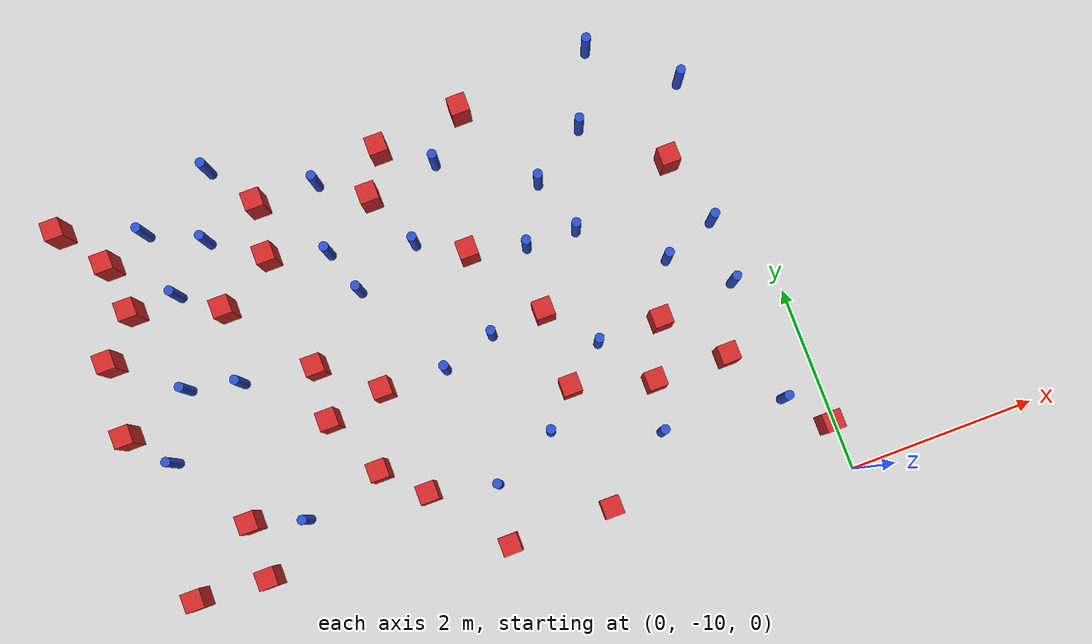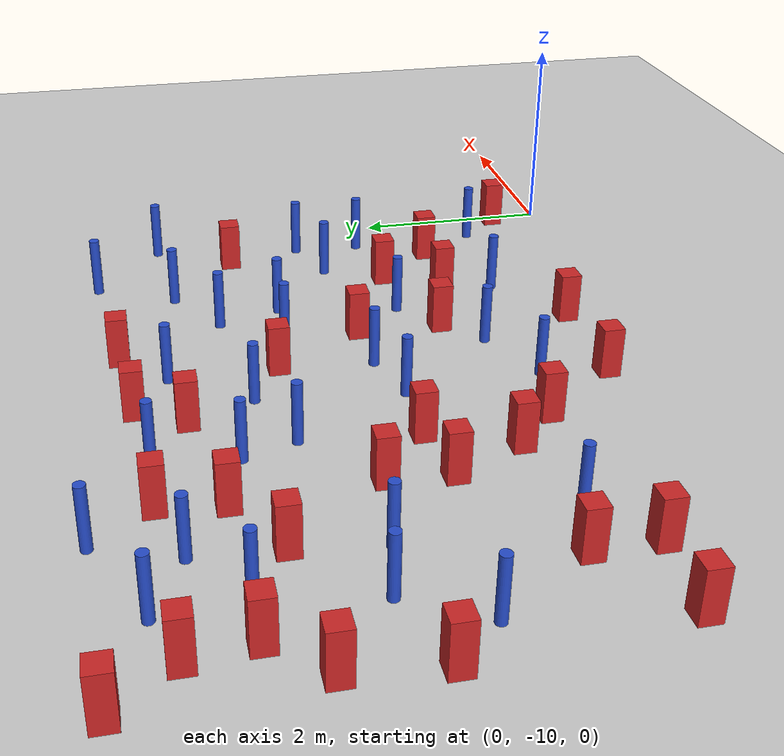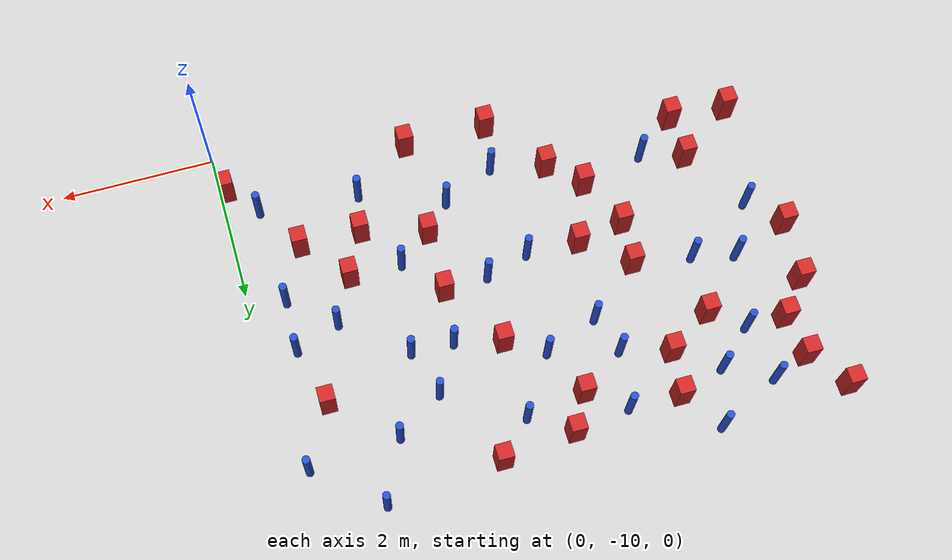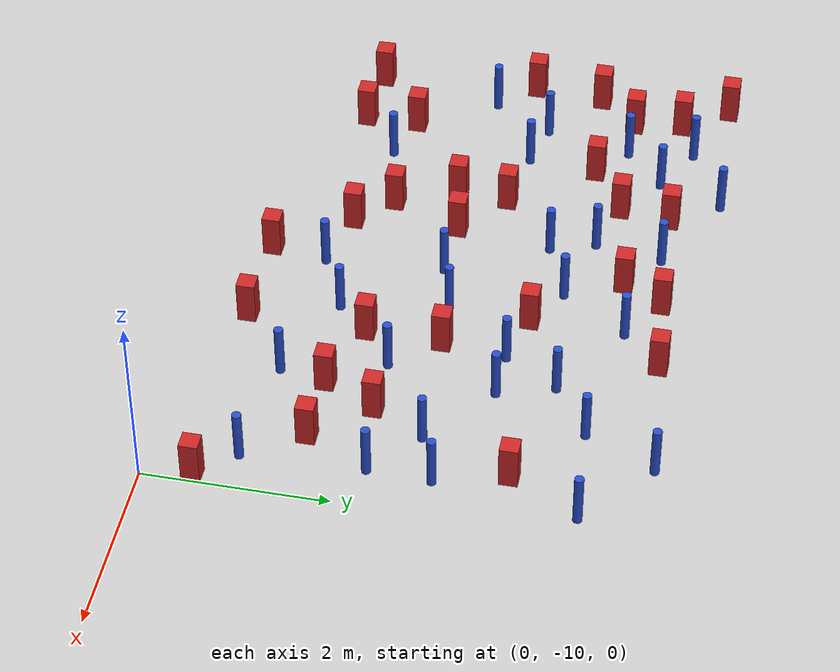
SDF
<sdf version="1.6">
 <world name="default">
  <model name="ground_plane">
   <static>1</static>
   <link name="link">
    <collision name="collision">
     <geometry><plane><normal>0 0 1</normal><size>100 100</size></plane></geometry>
     <surface><friction><ode><mu>100</mu><mu2>50</mu2></ode></friction></surface>
    </collision>
    <visual name="visual">
     <cast_shadows>0</cast_shadows>
     <geometry><plane><normal>0 0 1</normal><size>100 100</size></plane></geometry>
     <material>
      <ambient>1.0 1.0 1.0 1.0</ambient>
      <diffuse>0.8 0.8 0.8 1.0</diffuse>
      <specular>0.01 0.01 0.01 1.000000</specular>
     </material>
    </visual>
   </link>
  </model>
  <model name="square_post_obstacle1">
   <static>true</static>
   <pose>-3.47124073159 -5.11938644158 1.91545236811e-07 -7.35059704564e-06 1.12565212e-07 2.39332434364e-05</pose>
   <link name="link">
    <pose>0 0 0.25 0 -0 0</pose>
    <inertial>
     <mass>100</mass>
     <inertia>
      <ixx>0.166667</ixx>
      <ixy>0</ixy>
      <ixz>0</ixz>
      <iyy>0.166667</iyy>
      <iyz>0</iyz>
      <izz>0.166667</izz>
     </inertia>
    </inertial>
    <collision name="collision"><geometry><box><size>.2 .2 .5</size></box></geometry></collision>
    <visual name="visual">
     <geometry><box><size>.2 .2 .5</size></box></geometry>
     <material>
      <script><name>Gazebo/Red</name><uri>file://media/materials/scripts/gazebo.material</uri></script>
     </material>
    </visual>
   </link>
  </model>
  <model name="pole_obstacle1">
   <static>true</static>
   <pose>-4.20396154523 -5.22190420354 7.38925637345e-09 -8.47170692796e-08 1.24976764786e-08 -1.74513093032e-07</pose>
   <link name="link">
    <pose>0 0 0.3 0 -0 0</pose>
    <inertial>
     <mass>1</mass>
     <inertia><ixx>0.145833</ixx><ixy>0</ixy><ixz>0</ixz><iyy>0.145833</iyy><iyz>0</iyz><izz>0.125</izz></inertia>
    </inertial>
    <collision name="collision">
     <geometry><cylinder><radius>0.05</radius><length>.6</length></cylinder></geometry>
    </collision>
    <visual name="visual">
     <geometry><cylinder><radius>0.05</radius><length>.6</length></cylinder></geometry>
     <material>
      <script><name>Gazebo/Blue</name><uri>file://media/materials/scripts/gazebo.material</uri></script>
     </material>
    </visual>
   </link>
  </model>
  <model name="pole_obstacle7">
   <static>true</static>
   <pose>-1.03853403974 -7.27015901832 7.38925637345e-09 -8.47170692799e-08 1.2497676505e-08 -1.74513093018e-07</pose>
   <link name="link">
    <pose>0 0 0.3 0 -0 0</pose>
    <inertial>
     <mass>1</mass>
     <inertia><ixx>0.145833</ixx><ixy>0</ixy><ixz>0</ixz><iyy>0.145833</iyy><iyz>0</iyz><izz>0.125</izz></inertia>
    </inertial>
    <collision name="collision">
     <geometry><cylinder><radius>0.05</radius><length>.6</length></cylinder></geometry>
    </collision>
    <visual name="visual">
     <geometry><cylinder><radius>0.05</radius><length>.6</length></cylinder></geometry>
     <material>
      <script><name>Gazebo/Blue</name><uri>file://media/materials/scripts/gazebo.material</uri></script>
     </material>
    </visual>
   </link>
  </model>
  <model name="square_post_obstacle9">
   <static>true</static>
   <pose>-2.52650715397 -5.02211175676 1.91545236811e-07 -7.35059704564e-06 1.12565212e-07 2.39332434364e-05</pose>
   <link name="link">
    <pose>0 0 0.25 0 -0 0</pose>
    <inertial>
     <mass>100</mass>
     <inertia>
      <ixx>0.166667</ixx>
      <ixy>0</ixy>
      <ixz>0</ixz>
      <iyy>0.166667</iyy>
      <iyz>0</iyz>
      <izz>0.166667</izz>
     </inertia>
    </inertial>
    <collision name="collision"><geometry><box><size>.2 .2 .5</size></box></geometry></collision>
    <visual name="visual">
     <geometry><box><size>.2 .2 .5</size></box></geometry>
     <material>
      <script><name>Gazebo/Red</name><uri>file://media/materials/scripts/gazebo.material</uri></script>
     </material>
    </visual>
   </link>
  </model>
  <model name="square_post_obstacle18">
   <static>true</static>
   <pose>-4.86705667237 -5.21440921292 1.91545236811e-07 -7.35059704564e-06 1.12565212e-07 2.39332434364e-05</pose>
   <link name="link">
    <pose>0 0 0.25 0 -0 0</pose>
    <inertial>
     <mass>100</mass>
     <inertia>
      <ixx>0.166667</ixx>
      <ixy>0</ixy>
      <ixz>0</ixz>
      <iyy>0.166667</iyy>
      <iyz>0</iyz>
      <izz>0.166667</izz>
     </inertia>
    </inertial>
    <collision name="collision"><geometry><box><size>.2 .2 .5</size></box></geometry></collision>
    <visual name="visual">
     <geometry><box><size>.2 .2 .5</size></box></geometry>
     <material>
      <script><name>Gazebo/Red</name><uri>file://media/materials/scripts/gazebo.material</uri></script>
     </material>
    </visual>
   </link>
  </model>
  <model name="pole_obstacle13">
   <static>true</static>
   <pose>-6.17903770835 -6.80683427116 7.38925637345e-09 -8.47170692796e-08 1.24976764786e-08 -1.74513093032e-07</pose>
   <link name="link">
    <pose>0 0 0.3 0 -0 0</pose>
    <inertial>
     <mass>1</mass>
     <inertia><ixx>0.145833</ixx><ixy>0</ixy><ixz>0</ixz><iyy>0.145833</iyy><iyz>0</iyz><izz>0.125</izz></inertia>
    </inertial>
    <collision name="collision">
     <geometry><cylinder><radius>0.05</radius><length>.6</length></cylinder></geometry>
    </collision>
    <visual name="visual">
     <geometry><cylinder><radius>0.05</radius><length>.6</length></cylinder></geometry>
     <material>
      <script><name>Gazebo/Blue</name><uri>file://media/materials/scripts/gazebo.material</uri></script>
     </material>
    </visual>
   </link>
  </model>
  <model name="pole_obstacle17">
   <static>true</static>
   <pose>-0.48187798603 -7.73942333613 7.38925637345e-09 -8.471706928e-08 1.24976765062e-08 -1.74513093016e-07</pose>
   <link name="link">
    <pose>0 0 0.3 0 -0 0</pose>
    <inertial>
     <mass>1</mass>
     <inertia><ixx>0.145833</ixx><ixy>0</ixy><ixz>0</ixz><iyy>0.145833</iyy><iyz>0</iyz><izz>0.125</izz></inertia>
    </inertial>
    <collision name="collision">
     <geometry><cylinder><radius>0.05</radius><length>.6</length></cylinder></geometry>
    </collision>
    <visual name="visual">
     <geometry><cylinder><radius>0.05</radius><length>.6</length></cylinder></geometry>
     <material>
      <script><name>Gazebo/Blue</name><uri>file://media/materials/scripts/gazebo.material</uri></script>
     </material>
    </visual>
   </link>
  </model>
  <model name="square_post_obstacle30">
   <static>true</static>
   <pose>-6.90616150743 -4.78568812657 1.91545236811e-07 -7.35059704564e-06 1.12565212e-07 2.39332434364e-05</pose>
   <link name="link">
    <pose>0 0 0.25 0 -0 0</pose>
    <inertial>
     <mass>100</mass>
     <inertia>
      <ixx>0.166667</ixx>
      <ixy>0</ixy>
      <ixz>0</ixz>
      <iyy>0.166667</iyy>
      <iyz>0</iyz>
      <izz>0.166667</izz>
     </inertia>
    </inertial>
    <collision name="collision"><geometry><box><size>.2 .2 .5</size></box></geometry></collision>
    <visual name="visual">
     <geometry><box><size>.2 .2 .5</size></box></geometry>
     <material>
      <script><name>Gazebo/Red</name><uri>file://media/materials/scripts/gazebo.material</uri></script>
     </material>
    </visual>
   </link>
  </model>
  <model name="square_post_obstacle37">
   <static>true</static>
   <pose>-1.34081266648 -7.84919222086 1.91545236811e-07 -7.35059704564e-06 1.12565212e-07 2.39332434364e-05</pose>
   <link name="link">
    <pose>0 0 0.25 0 -0 0</pose>
    <inertial>
     <mass>100</mass>
     <inertia>
      <ixx>0.166667</ixx>
      <ixy>0</ixy>
      <ixz>0</ixz>
      <iyy>0.166667</iyy>
      <iyz>0</iyz>
      <izz>0.166667</izz>
     </inertia>
    </inertial>
    <collision name="collision"><geometry><box><size>.2 .2 .5</size></box></geometry></collision>
    <visual name="visual">
     <geometry><box><size>.2 .2 .5</size></box></geometry>
     <material>
      <script><name>Gazebo/Red</name><uri>file://media/materials/scripts/gazebo.material</uri></script>
     </material>
    </visual>
   </link>
  </model>
  <model name="pole_obstacle37">
   <static>true</static>
   <pose>-3.60440481703 -7.54532200177 7.38925637345e-09 -8.47170692798e-08 1.24976765033e-08 -1.74513093019e-07</pose>
   <link name="link">
    <pose>0 0 0.3 0 -0 0</pose>
    <inertial>
     <mass>1</mass>
     <inertia><ixx>0.145833</ixx><ixy>0</ixy><ixz>0</ixz><iyy>0.145833</iyy><iyz>0</iyz><izz>0.125</izz></inertia>
    </inertial>
    <collision name="collision">
     <geometry><cylinder><radius>0.05</radius><length>.6</length></cylinder></geometry>
    </collision>
    <visual name="visual">
     <geometry><cylinder><radius>0.05</radius><length>.6</length></cylinder></geometry>
     <material>
      <script><name>Gazebo/Blue</name><uri>file://media/materials/scripts/gazebo.material</uri></script>
     </material>
    </visual>
   </link>
  </model>
  <model name="square_post_obstacle38">
   <static>true</static>
   <pose>-6.01038113252 -8.92228871156 1.91545236811e-07 -7.35059704564e-06 1.12565212e-07 2.39332434364e-05</pose>
   <link name="link">
    <pose>0 0 0.25 0 -0 0</pose>
    <inertial>
     <mass>100</mass>
     <inertia>
      <ixx>0.166667</ixx>
      <ixy>0</ixy>
      <ixz>0</ixz>
      <iyy>0.166667</iyy>
      <iyz>0</iyz>
      <izz>0.166667</izz>
     </inertia>
    </inertial>
    <collision name="collision"><geometry><box><size>.2 .2 .5</size></box></geometry></collision>
    <visual name="visual">
     <geometry><box><size>.2 .2 .5</size></box></geometry>
     <material>
      <script><name>Gazebo/Red</name><uri>file://media/materials/scripts/gazebo.material</uri></script>
     </material>
    </visual>
   </link>
  </model>
  <model name="pole_obstacle42">
   <static>true</static>
   <pose>-2.8115767625 -8.53429334047 7.38925637345e-09 -8.47170692793e-08 1.24976764408e-08 -1.74513093041e-07</pose>
   <link name="link">
    <pose>0 0 0.3 0 -0 0</pose>
    <inertial>
     <mass>1</mass>
     <inertia><ixx>0.145833</ixx><ixy>0</ixy><ixz>0</ixz><iyy>0.145833</iyy><iyz>0</iyz><izz>0.125</izz></inertia>
    </inertial>
    <collision name="collision">
     <geometry><cylinder><radius>0.05</radius><length>.6</length></cylinder></geometry>
    </collision>
    <visual name="visual">
     <geometry><cylinder><radius>0.05</radius><length>.6</length></cylinder></geometry>
     <material>
      <script><name>Gazebo/Blue</name><uri>file://media/materials/scripts/gazebo.material</uri></script>
     </material>
    </visual>
   </link>
  </model>
  <model name="pole_obstacle48">
   <static>true</static>
   <pose>-5.48146075723 -5.40567217134 7.38925637345e-09 -8.47170692796e-08 1.24976764786e-08 -1.74513093032e-07</pose>
   <link name="link">
    <pose>0 0 0.3 0 -0 0</pose>
    <inertial>
     <mass>1</mass>
     <inertia><ixx>0.145833</ixx><ixy>0</ixy><ixz>0</ixz><iyy>0.145833</iyy><iyz>0</iyz><izz>0.125</izz></inertia>
    </inertial>
    <collision name="collision">
     <geometry><cylinder><radius>0.05</radius><length>.6</length></cylinder></geometry>
    </collision>
    <visual name="visual">
     <geometry><cylinder><radius>0.05</radius><length>.6</length></cylinder></geometry>
     <material>
      <script><name>Gazebo/Blue</name><uri>file://media/materials/scripts/gazebo.material</uri></script>
     </material>
    </visual>
   </link>
  </model>
  <model name="square_post_obstacle53">
   <static>true</static>
   <pose>-4.85539108707 -7.05669922708 1.91545236811e-07 -7.35059704564e-06 1.12565212e-07 2.39332434364e-05</pose>
   <link name="link">
    <pose>0 0 0.25 0 -0 0</pose>
    <inertial>
     <mass>100</mass>
     <inertia>
      <ixx>0.166667</ixx>
      <ixy>0</ixy>
      <ixz>0</ixz>
      <iyy>0.166667</iyy>
      <iyz>0</iyz>
      <izz>0.166667</izz>
     </inertia>
    </inertial>
    <collision name="collision"><geometry><box><size>.2 .2 .5</size></box></geometry></collision>
    <visual name="visual">
     <geometry><box><size>.2 .2 .5</size></box></geometry>
     <material>
      <script><name>Gazebo/Red</name><uri>file://media/materials/scripts/gazebo.material</uri></script>
     </material>
    </visual>
   </link>
  </model>
  <model name="pole_obstacle51">
   <static>true</static>
   <pose>-1.40260815248 -5.6270193179 7.38925637345e-09 -8.47170692799e-08 1.24976765033e-08 -1.74513093018e-07</pose>
   <link name="link">
    <pose>0 0 0.3 0 -0 0</pose>
    <inertial>
     <mass>1</mass>
     <inertia><ixx>0.145833</ixx><ixy>0</ixy><ixz>0</ixz><iyy>0.145833</iyy><iyz>0</iyz><izz>0.125</izz></inertia>
    </inertial>
    <collision name="collision">
     <geometry><cylinder><radius>0.05</radius><length>.6</length></cylinder></geometry>
    </collision>
    <visual name="visual">
     <geometry><cylinder><radius>0.05</radius><length>.6</length></cylinder></geometry>
     <material>
      <script><name>Gazebo/Blue</name><uri>file://media/materials/scripts/gazebo.material</uri></script>
     </material>
    </visual>
   </link>
  </model>
  <model name="square_post_obstacle54">
   <static>true</static>
   <pose>-2.96467949278 -6.47701076238 1.91545236811e-07 -7.35059704564e-06 1.12565212e-07 2.39332434364e-05</pose>
   <link name="link">
    <pose>0 0 0.25 0 -0 0</pose>
    <inertial>
     <mass>100</mass>
     <inertia>
      <ixx>0.166667</ixx>
      <ixy>0</ixy>
      <ixz>0</ixz>
      <iyy>0.166667</iyy>
      <iyz>0</iyz>
      <izz>0.166667</izz>
     </inertia>
    </inertial>
    <collision name="collision"><geometry><box><size>.2 .2 .5</size></box></geometry></collision>
    <visual name="visual">
     <geometry><box><size>.2 .2 .5</size></box></geometry>
     <material>
      <script><name>Gazebo/Red</name><uri>file://media/materials/scripts/gazebo.material</uri></script>
     </material>
    </visual>
   </link>
  </model>
  <model name="pole_obstacle54">
   <static>true</static>
   <pose>-6.06363618865 -5.10291878804 7.38925637345e-09 -8.47170692796e-08 1.24976764786e-08 -1.74513093032e-07</pose>
   <link name="link">
    <pose>0 0 0.3 0 -0 0</pose>
    <inertial>
     <mass>1</mass>
     <inertia><ixx>0.145833</ixx><ixy>0</ixy><ixz>0</ixz><iyy>0.145833</iyy><iyz>0</iyz><izz>0.125</izz></inertia>
    </inertial>
    <collision name="collision">
     <geometry><cylinder><radius>0.05</radius><length>.6</length></cylinder></geometry>
    </collision>
    <visual name="visual">
     <geometry><cylinder><radius>0.05</radius><length>.6</length></cylinder></geometry>
     <material>
      <script><name>Gazebo/Blue</name><uri>file://media/materials/scripts/gazebo.material</uri></script>
     </material>
    </visual>
   </link>
  </model>
  <model name="square_post_obstacle60">
   <static>true</static>
   <pose>-0.0926624190122 -9.46136238472 1.91545236811e-07 -7.35059704564e-06 1.12565212e-07 2.39332434364e-05</pose>
   <link name="link">
    <pose>0 0 0.25 0 -0 0</pose>
    <inertial>
     <mass>100</mass>
     <inertia>
      <ixx>0.166667</ixx>
      <ixy>0</ixy>
      <ixz>0</ixz>
      <iyy>0.166667</iyy>
      <iyz>0</iyz>
      <izz>0.166667</izz>
     </inertia>
    </inertial>
    <collision name="collision"><geometry><box><size>.2 .2 .5</size></box></geometry></collision>
    <visual name="visual">
     <geometry><box><size>.2 .2 .5</size></box></geometry>
     <material>
      <script><name>Gazebo/Red</name><uri>file://media/materials/scripts/gazebo.material</uri></script>
     </material>
    </visual>
   </link>
  </model>
  <model name="pole_obstacle63">
   <static>true</static>
   <pose>-2.3676688679 -6.63044513068 7.38925637345e-09 -8.47170692798e-08 1.24976765033e-08 -1.74513093019e-07</pose>
   <link name="link">
    <pose>0 0 0.3 0 -0 0</pose>
    <inertial>
     <mass>1</mass>
     <inertia><ixx>0.145833</ixx><ixy>0</ixy><ixz>0</ixz><iyy>0.145833</iyy><iyz>0</iyz><izz>0.125</izz></inertia>
    </inertial>
    <collision name="collision">
     <geometry><cylinder><radius>0.05</radius><length>.6</length></cylinder></geometry>
    </collision>
    <visual name="visual">
     <geometry><cylinder><radius>0.05</radius><length>.6</length></cylinder></geometry>
     <material>
      <script><name>Gazebo/Blue</name><uri>file://media/materials/scripts/gazebo.material</uri></script>
     </material>
    </visual>
   </link>
  </model>
  <model name="square_post_obstacle68">
   <static>true</static>
   <pose>-2.44752796722 -7.34015522212 1.91545236811e-07 -7.35059704564e-06 1.12565212e-07 2.39332434364e-05</pose>
   <link name="link">
    <pose>0 0 0.25 0 -0 0</pose>
    <inertial>
     <mass>100</mass>
     <inertia>
      <ixx>0.166667</ixx>
      <ixy>0</ixy>
      <ixz>0</ixz>
      <iyy>0.166667</iyy>
      <iyz>0</iyz>
      <izz>0.166667</izz>
     </inertia>
    </inertial>
    <collision name="collision"><geometry><box><size>.2 .2 .5</size></box></geometry></collision>
    <visual name="visual">
     <geometry><box><size>.2 .2 .5</size></box></geometry>
     <material>
      <script><name>Gazebo/Red</name><uri>file://media/materials/scripts/gazebo.material</uri></script>
     </material>
    </visual>
   </link>
  </model>
  <model name="pole_obstacle88">
   <static>true</static>
   <pose>-2.01427456803 -6.03172738387 7.38925637345e-09 -8.471706928e-08 1.24976765103e-08 -1.74513093015e-07</pose>
   <link name="link">
    <pose>0 0 0.3 0 -0 0</pose>
    <inertial>
     <mass>1</mass>
     <inertia><ixx>0.145833</ixx><ixy>0</ixy><ixz>0</ixz><iyy>0.145833</iyy><iyz>0</iyz><izz>0.125</izz></inertia>
    </inertial>
    <collision name="collision">
     <geometry><cylinder><radius>0.05</radius><length>.6</length></cylinder></geometry>
    </collision>
    <visual name="visual">
     <geometry><cylinder><radius>0.05</radius><length>.6</length></cylinder></geometry>
     <material>
      <script><name>Gazebo/Blue</name><uri>file://media/materials/scripts/gazebo.material</uri></script>
     </material>
    </visual>
   </link>
  </model>
  <model name="pole_obstacle99">
   <static>true</static>
   <pose>-0.237233686462 -5.52424549186 7.38925637345e-09 -8.47170692799e-08 1.2497676507e-08 -1.74513093018e-07</pose>
   <link name="link">
    <pose>0 0 0.3 0 -0 0</pose>
    <inertial>
     <mass>1</mass>
     <inertia><ixx>0.145833</ixx><ixy>0</ixy><ixz>0</ixz><iyy>0.145833</iyy><iyz>0</iyz><izz>0.125</izz></inertia>
    </inertial>
    <collision name="collision">
     <geometry><cylinder><radius>0.05</radius><length>.6</length></cylinder></geometry>
    </collision>
    <visual name="visual">
     <geometry><cylinder><radius>0.05</radius><length>.6</length></cylinder></geometry>
     <material>
      <script><name>Gazebo/Blue</name><uri>file://media/materials/scripts/gazebo.material</uri></script>
     </material>
    </visual>
   </link>
  </model>
  <model name="square_post_obstacle88">
   <static>true</static>
   <pose>-0.659591120304 -6.29064669999 1.91545236811e-07 -7.35059704564e-06 1.12565212e-07 2.39332434364e-05</pose>
   <link name="link">
    <pose>0 0 0.25 0 -0 0</pose>
    <inertial>
     <mass>100</mass>
     <inertia>
      <ixx>0.166667</ixx>
      <ixy>0</ixy>
      <ixz>0</ixz>
      <iyy>0.166667</iyy>
      <iyz>0</iyz>
      <izz>0.166667</izz>
     </inertia>
    </inertial>
    <collision name="collision"><geometry><box><size>.2 .2 .5</size></box></geometry></collision>
    <visual name="visual">
     <geometry><box><size>.2 .2 .5</size></box></geometry>
     <material>
      <script><name>Gazebo/Red</name><uri>file://media/materials/scripts/gazebo.material</uri></script>
     </material>
    </visual>
   </link>
  </model>
  <model name="pole_obstacle107">
   <static>true</static>
   <pose>-1.73333901471 -8.94248636781 7.38925637345e-09 -8.47170692798e-08 1.24976764881e-08 -1.74513093027e-07</pose>
   <link name="link">
    <pose>0 0 0.3 0 -0 0</pose>
    <inertial>
     <mass>1</mass>
     <inertia><ixx>0.145833</ixx><ixy>0</ixy><ixz>0</ixz><iyy>0.145833</iyy><iyz>0</iyz><izz>0.125</izz></inertia>
    </inertial>
    <collision name="collision">
     <geometry><cylinder><radius>0.05</radius><length>.6</length></cylinder></geometry>
    </collision>
    <visual name="visual">
     <geometry><cylinder><radius>0.05</radius><length>.6</length></cylinder></geometry>
     <material>
      <script><name>Gazebo/Blue</name><uri>file://media/materials/scripts/gazebo.material</uri></script>
     </material>
    </visual>
   </link>
  </model>
  <model name="pole_obstacle109">
   <static>true</static>
   <pose>-5.22694905315 -4.6928620951 7.38925637345e-09 -8.47170692796e-08 1.24976764786e-08 -1.74513093032e-07</pose>
   <link name="link">
    <pose>0 0 0.3 0 -0 0</pose>
    <inertial>
     <mass>1</mass>
     <inertia><ixx>0.145833</ixx><ixy>0</ixy><ixz>0</ixz><iyy>0.145833</iyy><iyz>0</iyz><izz>0.125</izz></inertia>
    </inertial>
    <collision name="collision">
     <geometry><cylinder><radius>0.05</radius><length>.6</length></cylinder></geometry>
    </collision>
    <visual name="visual">
     <geometry><cylinder><radius>0.05</radius><length>.6</length></cylinder></geometry>
     <material>
      <script><name>Gazebo/Blue</name><uri>file://media/materials/scripts/gazebo.material</uri></script>
     </material>
    </visual>
   </link>
  </model>
  <model name="square_post_obstacle100">
   <static>true</static>
   <pose>-2.46404812975 -8.17245809366 1.91545236811e-07 -7.35059704564e-06 1.12565212e-07 2.39332434364e-05</pose>
   <link name="link">
    <pose>0 0 0.25 0 -0 0</pose>
    <inertial>
     <mass>100</mass>
     <inertia>
      <ixx>0.166667</ixx>
      <ixy>0</ixy>
      <ixz>0</ixz>
      <iyy>0.166667</iyy>
      <iyz>0</iyz>
      <izz>0.166667</izz>
     </inertia>
    </inertial>
    <collision name="collision"><geometry><box><size>.2 .2 .5</size></box></geometry></collision>
    <visual name="visual">
     <geometry><box><size>.2 .2 .5</size></box></geometry>
     <material>
      <script><name>Gazebo/Red</name><uri>file://media/materials/scripts/gazebo.material</uri></script>
     </material>
    </visual>
   </link>
  </model>
  <model name="pole_obstacle114">
   <static>true</static>
   <pose>-0.455853155985 -7.05583491724 7.38925637345e-09 -8.471706928e-08 1.24976765062e-08 -1.74513093016e-07</pose>
   <link name="link">
    <pose>0 0 0.3 0 -0 0</pose>
    <inertial>
     <mass>1</mass>
     <inertia><ixx>0.145833</ixx><ixy>0</ixy><ixz>0</ixz><iyy>0.145833</iyy><iyz>0</iyz><izz>0.125</izz></inertia>
    </inertial>
    <collision name="collision">
     <geometry><cylinder><radius>0.05</radius><length>.6</length></cylinder></geometry>
    </collision>
    <visual name="visual">
     <geometry><cylinder><radius>0.05</radius><length>.6</length></cylinder></geometry>
     <material>
      <script><name>Gazebo/Blue</name><uri>file://media/materials/scripts/gazebo.material</uri></script>
     </material>
    </visual>
   </link>
  </model>
  <model name="square_post_obstacle106">
   <static>true</static>
   <pose>-4.28554670682 -7.51997963353 1.91545236811e-07 -7.35059704564e-06 1.12565212e-07 2.39332434364e-05</pose>
   <link name="link">
    <pose>0 0 0.25 0 -0 0</pose>
    <inertial>
     <mass>100</mass>
     <inertia>
      <ixx>0.166667</ixx>
      <ixy>0</ixy>
      <ixz>0</ixz>
      <iyy>0.166667</iyy>
      <iyz>0</iyz>
      <izz>0.166667</izz>
     </inertia>
    </inertial>
    <collision name="collision"><geometry><box><size>.2 .2 .5</size></box></geometry></collision>
    <visual name="visual">
     <geometry><box><size>.2 .2 .5</size></box></geometry>
     <material>
      <script><name>Gazebo/Red</name><uri>file://media/materials/scripts/gazebo.material</uri></script>
     </material>
    </visual>
   </link>
  </model>
  <model name="square_post_obstacle107">
   <static>true</static>
   <pose>-5.54006549317 -6.15494329559 1.91545236811e-07 -7.35059704564e-06 1.12565212e-07 2.39332434364e-05</pose>
   <link name="link">
    <pose>0 0 0.25 0 -0 0</pose>
    <inertial>
     <mass>100</mass>
     <inertia>
      <ixx>0.166667</ixx>
      <ixy>0</ixy>
      <ixz>0</ixz>
      <iyy>0.166667</iyy>
      <iyz>0</iyz>
      <izz>0.166667</izz>
     </inertia>
    </inertial>
    <collision name="collision"><geometry><box><size>.2 .2 .5</size></box></geometry></collision>
    <visual name="visual">
     <geometry><box><size>.2 .2 .5</size></box></geometry>
     <material>
      <script><name>Gazebo/Red</name><uri>file://media/materials/scripts/gazebo.material</uri></script>
     </material>
    </visual>
   </link>
  </model>
  <model name="pole_obstacle124">
   <static>true</static>
   <pose>-0.437401940204 -9.06245713184 7.38925637345e-09 -8.47170692796e-08 1.24976764724e-08 -1.74513093036e-07</pose>
   <link name="link">
    <pose>0 0 0.3 0 -0 0</pose>
    <inertial>
     <mass>1</mass>
     <inertia><ixx>0.145833</ixx><ixy>0</ixy><ixz>0</ixz><iyy>0.145833</iyy><iyz>0</iyz><izz>0.125</izz></inertia>
    </inertial>
    <collision name="collision">
     <geometry><cylinder><radius>0.05</radius><length>.6</length></cylinder></geometry>
    </collision>
    <visual name="visual">
     <geometry><cylinder><radius>0.05</radius><length>.6</length></cylinder></geometry>
     <material>
      <script><name>Gazebo/Blue</name><uri>file://media/materials/scripts/gazebo.material</uri></script>
     </material>
    </visual>
   </link>
  </model>
  <model name="pole_obstacle125">
   <static>true</static>
   <pose>-5.46143991741 -8.50282990827 7.38925637345e-09 -8.471706928e-08 1.24976765081e-08 -1.74513093015e-07</pose>
   <link name="link">
    <pose>0 0 0.3 0 -0 0</pose>
    <inertial>
     <mass>1</mass>
     <inertia><ixx>0.145833</ixx><ixy>0</ixy><ixz>0</ixz><iyy>0.145833</iyy><iyz>0</iyz><izz>0.125</izz></inertia>
    </inertial>
    <collision name="collision">
     <geometry><cylinder><radius>0.05</radius><length>.6</length></cylinder></geometry>
    </collision>
    <visual name="visual">
     <geometry><cylinder><radius>0.05</radius><length>.6</length></cylinder></geometry>
     <material>
      <script><name>Gazebo/Blue</name><uri>file://media/materials/scripts/gazebo.material</uri></script>
     </material>
    </visual>
   </link>
  </model>
  <model name="pole_obstacle130">
   <static>true</static>
   <pose>-6.55004283047 -7.47532968398 7.38925637345e-09 -8.47170692796e-08 1.24976764786e-08 -1.74513093032e-07</pose>
   <link name="link">
    <pose>0 0 0.3 0 -0 0</pose>
    <inertial>
     <mass>1</mass>
     <inertia><ixx>0.145833</ixx><ixy>0</ixy><ixz>0</ixz><iyy>0.145833</iyy><iyz>0</iyz><izz>0.125</izz></inertia>
    </inertial>
    <collision name="collision">
     <geometry><cylinder><radius>0.05</radius><length>.6</length></cylinder></geometry>
    </collision>
    <visual name="visual">
     <geometry><cylinder><radius>0.05</radius><length>.6</length></cylinder></geometry>
     <material>
      <script><name>Gazebo/Blue</name><uri>file://media/materials/scripts/gazebo.material</uri></script>
     </material>
    </visual>
   </link>
  </model>
  <model name="square_post_obstacle120">
   <static>true</static>
   <pose>-4.90526449616 -7.63112155882 1.91545236811e-07 -7.35059704564e-06 1.12565212e-07 2.39332434364e-05</pose>
   <link name="link">
    <pose>0 0 0.25 0 -0 0</pose>
    <inertial>
     <mass>100</mass>
     <inertia>
      <ixx>0.166667</ixx>
      <ixy>0</ixy>
      <ixz>0</ixz>
      <iyy>0.166667</iyy>
      <iyz>0</iyz>
      <izz>0.166667</izz>
     </inertia>
    </inertial>
    <collision name="collision"><geometry><box><size>.2 .2 .5</size></box></geometry></collision>
    <visual name="visual">
     <geometry><box><size>.2 .2 .5</size></box></geometry>
     <material>
      <script><name>Gazebo/Red</name><uri>file://media/materials/scripts/gazebo.material</uri></script>
     </material>
    </visual>
   </link>
  </model>
  <model name="pole_obstacle143">
   <static>true</static>
   <pose>-4.16246890714 -6.46052598112 7.38925637345e-09 -8.47170692796e-08 1.24976764786e-08 -1.74513093032e-07</pose>
   <link name="link">
    <pose>0 0 0.3 0 -0 0</pose>
    <inertial>
     <mass>1</mass>
     <inertia><ixx>0.145833</ixx><ixy>0</ixy><ixz>0</ixz><iyy>0.145833</iyy><iyz>0</iyz><izz>0.125</izz></inertia>
    </inertial>
    <collision name="collision">
     <geometry><cylinder><radius>0.05</radius><length>.6</length></cylinder></geometry>
    </collision>
    <visual name="visual">
     <geometry><cylinder><radius>0.05</radius><length>.6</length></cylinder></geometry>
     <material>
      <script><name>Gazebo/Blue</name><uri>file://media/materials/scripts/gazebo.material</uri></script>
     </material>
    </visual>
   </link>
  </model>
  <model name="square_post_obstacle136">
   <static>true</static>
   <pose>-6.46105624407 -5.8391835546 1.91545236811e-07 -7.35059704564e-06 1.12565212e-07 2.39332434364e-05</pose>
   <link name="link">
    <pose>0 0 0.25 0 -0 0</pose>
    <inertial>
     <mass>100</mass>
     <inertia>
      <ixx>0.166667</ixx>
      <ixy>0</ixy>
      <ixz>0</ixz>
      <iyy>0.166667</iyy>
      <iyz>0</iyz>
      <izz>0.166667</izz>
     </inertia>
    </inertial>
    <collision name="collision"><geometry><box><size>.2 .2 .5</size></box></geometry></collision>
    <visual name="visual">
     <geometry><box><size>.2 .2 .5</size></box></geometry>
     <material>
      <script><name>Gazebo/Red</name><uri>file://media/materials/scripts/gazebo.material</uri></script>
     </material>
    </visual>
   </link>
  </model>
  <model name="pole_obstacle146">
   <static>true</static>
   <pose>-3.50593940057 -8.85462261079 7.38925637345e-09 -8.47170692793e-08 1.24976764408e-08 -1.74513093041e-07</pose>
   <link name="link">
    <pose>0 0 0.3 0 -0 0</pose>
    <inertial>
     <mass>1</mass>
     <inertia><ixx>0.145833</ixx><ixy>0</ixy><ixz>0</ixz><iyy>0.145833</iyy><iyz>0</iyz><izz>0.125</izz></inertia>
    </inertial>
    <collision name="collision">
     <geometry><cylinder><radius>0.05</radius><length>.6</length></cylinder></geometry>
    </collision>
    <visual name="visual">
     <geometry><cylinder><radius>0.05</radius><length>.6</length></cylinder></geometry>
     <material>
      <script><name>Gazebo/Blue</name><uri>file://media/materials/scripts/gazebo.material</uri></script>
     </material>
    </visual>
   </link>
  </model>
  <model name="pole_obstacle147">
   <static>true</static>
   <pose>-2.96270351176 -5.44971325095 7.38925637345e-09 -8.47170692798e-08 1.24976765033e-08 -1.74513093019e-07</pose>
   <link name="link">
    <pose>0 0 0.3 0 -0 0</pose>
    <inertial>
     <mass>1</mass>
     <inertia><ixx>0.145833</ixx><ixy>0</ixy><ixz>0</ixz><iyy>0.145833</iyy><iyz>0</iyz><izz>0.125</izz></inertia>
    </inertial>
    <collision name="collision">
     <geometry><cylinder><radius>0.05</radius><length>.6</length></cylinder></geometry>
    </collision>
    <visual name="visual">
     <geometry><cylinder><radius>0.05</radius><length>.6</length></cylinder></geometry>
     <material>
      <script><name>Gazebo/Blue</name><uri>file://media/materials/scripts/gazebo.material</uri></script>
     </material>
    </visual>
   </link>
  </model>
  <model name="pole_obstacle149">
   <static>true</static>
   <pose>-5.63185046619 -6.93547677821 7.38925637345e-09 -8.47170692796e-08 1.24976764786e-08 -1.74513093032e-07</pose>
   <link name="link">
    <pose>0 0 0.3 0 -0 0</pose>
    <inertial>
     <mass>1</mass>
     <inertia><ixx>0.145833</ixx><ixy>0</ixy><ixz>0</ixz><iyy>0.145833</iyy><iyz>0</iyz><izz>0.125</izz></inertia>
    </inertial>
    <collision name="collision">
     <geometry><cylinder><radius>0.05</radius><length>.6</length></cylinder></geometry>
    </collision>
    <visual name="visual">
     <geometry><cylinder><radius>0.05</radius><length>.6</length></cylinder></geometry>
     <material>
      <script><name>Gazebo/Blue</name><uri>file://media/materials/scripts/gazebo.material</uri></script>
     </material>
    </visual>
   </link>
  </model>
  <model name="square_post_obstacle147">
   <static>true</static>
   <pose>-4.59979617904 -8.29732198983 1.91545236811e-07 -7.35059704564e-06 1.12565212e-07 2.39332434364e-05</pose>
   <link name="link">
    <pose>0 0 0.25 0 -0 0</pose>
    <inertial>
     <mass>100</mass>
     <inertia>
      <ixx>0.166667</ixx>
      <ixy>0</ixy>
      <ixz>0</ixz>
      <iyy>0.166667</iyy>
      <iyz>0</iyz>
      <izz>0.166667</izz>
     </inertia>
    </inertial>
    <collision name="collision"><geometry><box><size>.2 .2 .5</size></box></geometry></collision>
    <visual name="visual">
     <geometry><box><size>.2 .2 .5</size></box></geometry>
     <material>
      <script><name>Gazebo/Red</name><uri>file://media/materials/scripts/gazebo.material</uri></script>
     </material>
    </visual>
   </link>
  </model>
  <model name="pole_obstacle157">
   <static>true</static>
   <pose>-1.03542476293 -4.85589839978 7.38925637345e-09 -8.47170692799e-08 1.2497676505e-08 -1.74513093018e-07</pose>
   <link name="link">
    <pose>0 0 0.3 0 -0 0</pose>
    <inertial>
     <mass>1</mass>
     <inertia><ixx>0.145833</ixx><ixy>0</ixy><ixz>0</ixz><iyy>0.145833</iyy><iyz>0</iyz><izz>0.125</izz></inertia>
    </inertial>
    <collision name="collision">
     <geometry><cylinder><radius>0.05</radius><length>.6</length></cylinder></geometry>
    </collision>
    <visual name="visual">
     <geometry><cylinder><radius>0.05</radius><length>.6</length></cylinder></geometry>
     <material>
      <script><name>Gazebo/Blue</name><uri>file://media/materials/scripts/gazebo.material</uri></script>
     </material>
    </visual>
   </link>
  </model>
  <model name="pole_obstacle159">
   <static>true</static>
   <pose>-3.0314268428 -7.37742664803 7.38925637345e-09 -8.47170692798e-08 1.24976765033e-08 -1.74513093019e-07</pose>
   <link name="link">
    <pose>0 0 0.3 0 -0 0</pose>
    <inertial>
     <mass>1</mass>
     <inertia><ixx>0.145833</ixx><ixy>0</ixy><ixz>0</ixz><iyy>0.145833</iyy><iyz>0</iyz><izz>0.125</izz></inertia>
    </inertial>
    <collision name="collision">
     <geometry><cylinder><radius>0.05</radius><length>.6</length></cylinder></geometry>
    </collision>
    <visual name="visual">
     <geometry><cylinder><radius>0.05</radius><length>.6</length></cylinder></geometry>
     <material>
      <script><name>Gazebo/Blue</name><uri>file://media/materials/scripts/gazebo.material</uri></script>
     </material>
    </visual>
   </link>
  </model>
  <model name="pole_obstacle168">
   <static>true</static>
   <pose>-3.45352419913 -6.18687221471 7.38925637345e-09 -8.47170692794e-08 1.24976764468e-08 -1.7451309304e-07</pose>
   <link name="link">
    <pose>0 0 0.3 0 -0 0</pose>
    <inertial>
     <mass>1</mass>
     <inertia><ixx>0.145833</ixx><ixy>0</ixy><ixz>0</ixz><iyy>0.145833</iyy><iyz>0</iyz><izz>0.125</izz></inertia>
    </inertial>
    <collision name="collision">
     <geometry><cylinder><radius>0.05</radius><length>.6</length></cylinder></geometry>
    </collision>
    <visual name="visual">
     <geometry><cylinder><radius>0.05</radius><length>.6</length></cylinder></geometry>
     <material>
      <script><name>Gazebo/Blue</name><uri>file://media/materials/scripts/gazebo.material</uri></script>
     </material>
    </visual>
   </link>
  </model>
  <model name="square_post_obstacle170">
   <static>true</static>
   <pose>-0.832208009775 -8.43929085586 1.91545236811e-07 -7.35059704564e-06 1.12565212e-07 2.39332434364e-05</pose>
   <link name="link">
    <pose>0 0 0.25 0 -0 0</pose>
    <inertial>
     <mass>100</mass>
     <inertia>
      <ixx>0.166667</ixx>
      <ixy>0</ixy>
      <ixz>0</ixz>
      <iyy>0.166667</iyy>
      <iyz>0</iyz>
      <izz>0.166667</izz>
     </inertia>
    </inertial>
    <collision name="collision"><geometry><box><size>.2 .2 .5</size></box></geometry></collision>
    <visual name="visual">
     <geometry><box><size>.2 .2 .5</size></box></geometry>
     <material>
      <script><name>Gazebo/Red</name><uri>file://media/materials/scripts/gazebo.material</uri></script>
     </material>
    </visual>
   </link>
  </model>
  <model name="pole_obstacle187">
   <static>true</static>
   <pose>-2.02327514552 -7.84203361689 7.38925637345e-09 -8.471706928e-08 1.24976765103e-08 -1.74513093015e-07</pose>
   <link name="link">
    <pose>0 0 0.3 0 -0 0</pose>
    <inertial>
     <mass>1</mass>
     <inertia><ixx>0.145833</ixx><ixy>0</ixy><ixz>0</ixz><iyy>0.145833</iyy><iyz>0</iyz><izz>0.125</izz></inertia>
    </inertial>
    <collision name="collision">
     <geometry><cylinder><radius>0.05</radius><length>.6</length></cylinder></geometry>
    </collision>
    <visual name="visual">
     <geometry><cylinder><radius>0.05</radius><length>.6</length></cylinder></geometry>
     <material>
      <script><name>Gazebo/Blue</name><uri>file://media/materials/scripts/gazebo.material</uri></script>
     </material>
    </visual>
   </link>
  </model>
  <model name="square_post_obstacle178">
   <static>true</static>
   <pose>-6.84112636392 -6.27604754925 1.91545236811e-07 -7.35059704564e-06 1.12565212e-07 2.39332434364e-05</pose>
   <link name="link">
    <pose>0 0 0.25 0 -0 0</pose>
    <inertial>
     <mass>100</mass>
     <inertia>
      <ixx>0.166667</ixx>
      <ixy>0</ixy>
      <ixz>0</ixz>
      <iyy>0.166667</iyy>
      <iyz>0</iyz>
      <izz>0.166667</izz>
     </inertia>
    </inertial>
    <collision name="collision"><geometry><box><size>.2 .2 .5</size></box></geometry></collision>
    <visual name="visual">
     <geometry><box><size>.2 .2 .5</size></box></geometry>
     <material>
      <script><name>Gazebo/Red</name><uri>file://media/materials/scripts/gazebo.material</uri></script>
     </material>
    </visual>
   </link>
  </model>
  <model name="square_post_obstacle179">
   <static>true</static>
   <pose>-4.20522696819 -8.68523809289 1.91545236811e-07 -7.35059704564e-06 1.12565212e-07 2.39332434364e-05</pose>
   <link name="link">
    <pose>0 0 0.25 0 -0 0</pose>
    <inertial>
     <mass>100</mass>
     <inertia>
      <ixx>0.166667</ixx>
      <ixy>0</ixy>
      <ixz>0</ixz>
      <iyy>0.166667</iyy>
      <iyz>0</iyz>
      <izz>0.166667</izz>
     </inertia>
    </inertial>
    <collision name="collision"><geometry><box><size>.2 .2 .5</size></box></geometry></collision>
    <visual name="visual">
     <geometry><box><size>.2 .2 .5</size></box></geometry>
     <material>
      <script><name>Gazebo/Red</name><uri>file://media/materials/scripts/gazebo.material</uri></script>
     </material>
    </visual>
   </link>
  </model>
  <model name="square_post_obstacle182">
   <static>true</static>
   <pose>-2.50626980361 -9.48062263594 1.91545236811e-07 -7.35059704564e-06 1.12565212e-07 2.39332434364e-05</pose>
   <link name="link">
    <pose>0 0 0.25 0 -0 0</pose>
    <inertial>
     <mass>100</mass>
     <inertia>
      <ixx>0.166667</ixx>
      <ixy>0</ixy>
      <ixz>0</ixz>
      <iyy>0.166667</iyy>
      <iyz>0</iyz>
      <izz>0.166667</izz>
     </inertia>
    </inertial>
    <collision name="collision"><geometry><box><size>.2 .2 .5</size></box></geometry></collision>
    <visual name="visual">
     <geometry><box><size>.2 .2 .5</size></box></geometry>
     <material>
      <script><name>Gazebo/Red</name><uri>file://media/materials/scripts/gazebo.material</uri></script>
     </material>
    </visual>
   </link>
  </model>
  <model name="pole_obstacle198">
   <static>true</static>
   <pose>-4.328404078 -5.96695511692 7.38925637345e-09 -8.47170692796e-08 1.24976764786e-08 -1.74513093032e-07</pose>
   <link name="link">
    <pose>0 0 0.3 0 -0 0</pose>
    <inertial>
     <mass>1</mass>
     <inertia><ixx>0.145833</ixx><ixy>0</ixy><ixz>0</ixz><iyy>0.145833</iyy><iyz>0</iyz><izz>0.125</izz></inertia>
    </inertial>
    <collision name="collision">
     <geometry><cylinder><radius>0.05</radius><length>.6</length></cylinder></geometry>
    </collision>
    <visual name="visual">
     <geometry><cylinder><radius>0.05</radius><length>.6</length></cylinder></geometry>
     <material>
      <script><name>Gazebo/Blue</name><uri>file://media/materials/scripts/gazebo.material</uri></script>
     </material>
    </visual>
   </link>
  </model>
  <model name="square_post_obstacle192">
   <static>true</static>
   <pose>-6.77213275985 -8.86978639222 1.91545236811e-07 -7.35059704564e-06 1.12565212e-07 2.39332434364e-05</pose>
   <link name="link">
    <pose>0 0 0.25 0 -0 0</pose>
    <inertial>
     <mass>100</mass>
     <inertia>
      <ixx>0.166667</ixx>
      <ixy>0</ixy>
      <ixz>0</ixz>
      <iyy>0.166667</iyy>
      <iyz>0</iyz>
      <izz>0.166667</izz>
     </inertia>
    </inertial>
    <collision name="collision"><geometry><box><size>.2 .2 .5</size></box></geometry></collision>
    <visual name="visual">
     <geometry><box><size>.2 .2 .5</size></box></geometry>
     <material>
      <script><name>Gazebo/Red</name><uri>file://media/materials/scripts/gazebo.material</uri></script>
     </material>
    </visual>
   </link>
  </model>
  <model name="square_post_obstacle197">
   <static>true</static>
   <pose>-4.94425194516 -5.78449348852 1.91545236811e-07 -7.35059704564e-06 1.12565212e-07 2.39332434364e-05</pose>
   <link name="link">
    <pose>0 0 0.25 0 -0 0</pose>
    <inertial>
     <mass>100</mass>
     <inertia>
      <ixx>0.166667</ixx>
      <ixy>0</ixy>
      <ixz>0</ixz>
      <iyy>0.166667</iyy>
      <iyz>0</iyz>
      <izz>0.166667</izz>
     </inertia>
    </inertial>
    <collision name="collision"><geometry><box><size>.2 .2 .5</size></box></geometry></collision>
    <visual name="visual">
     <geometry><box><size>.2 .2 .5</size></box></geometry>
     <material>
      <script><name>Gazebo/Red</name><uri>file://media/materials/scripts/gazebo.material</uri></script>
     </material>
    </visual>
   </link>
  </model>
  <model name="pole_obstacle213">
   <static>true</static>
   <pose>-1.82112149763 -6.64470790682 7.38925637345e-09 -8.47170692799e-08 1.24976765033e-08 -1.74513093018e-07</pose>
   <link name="link">
    <pose>0 0 0.3 0 -0 0</pose>
    <inertial>
     <mass>1</mass>
     <inertia><ixx>0.145833</ixx><ixy>0</ixy><ixz>0</ixz><iyy>0.145833</iyy><iyz>0</iyz><izz>0.125</izz></inertia>
    </inertial>
    <collision name="collision">
     <geometry><cylinder><radius>0.05</radius><length>.6</length></cylinder></geometry>
    </collision>
    <visual name="visual">
     <geometry><cylinder><radius>0.05</radius><length>.6</length></cylinder></geometry>
     <material>
      <script><name>Gazebo/Blue</name><uri>file://media/materials/scripts/gazebo.material</uri></script>
     </material>
    </visual>
   </link>
  </model>
  <model name="pole_obstacle214">
   <static>true</static>
   <pose>-5.95733580814 -5.83868655038 7.38925637345e-09 -8.47170692796e-08 1.24976764786e-08 -1.74513093032e-07</pose>
   <link name="link">
    <pose>0 0 0.3 0 -0 0</pose>
    <inertial>
     <mass>1</mass>
     <inertia><ixx>0.145833</ixx><ixy>0</ixy><ixz>0</ixz><iyy>0.145833</iyy><iyz>0</iyz><izz>0.125</izz></inertia>
    </inertial>
    <collision name="collision">
     <geometry><cylinder><radius>0.05</radius><length>.6</length></cylinder></geometry>
    </collision>
    <visual name="visual">
     <geometry><cylinder><radius>0.05</radius><length>.6</length></cylinder></geometry>
     <material>
      <script><name>Gazebo/Blue</name><uri>file://media/materials/scripts/gazebo.material</uri></script>
     </material>
    </visual>
   </link>
  </model>
  <model name="square_post_obstacle205">
   <static>true</static>
   <pose>-6.91514588275 -7.06189528822 1.91545236811e-07 -7.35059704564e-06 1.12565212e-07 2.39332434364e-05</pose>
   <link name="link">
    <pose>0 0 0.25 0 -0 0</pose>
    <inertial>
     <mass>100</mass>
     <inertia>
      <ixx>0.166667</ixx>
      <ixy>0</ixy>
      <ixz>0</ixz>
      <iyy>0.166667</iyy>
      <iyz>0</iyz>
      <izz>0.166667</izz>
     </inertia>
    </inertial>
    <collision name="collision"><geometry><box><size>.2 .2 .5</size></box></geometry></collision>
    <visual name="visual">
     <geometry><box><size>.2 .2 .5</size></box></geometry>
     <material>
      <script><name>Gazebo/Red</name><uri>file://media/materials/scripts/gazebo.material</uri></script>
     </material>
    </visual>
   </link>
  </model>
  <model name="square_post_obstacle209">
   <static>true</static>
   <pose>-1.62777542335 -8.42557145425 1.91545236811e-07 -7.35059704564e-06 1.12565212e-07 2.39332434364e-05</pose>
   <link name="link">
    <pose>0 0 0.25 0 -0 0</pose>
    <inertial>
     <mass>100</mass>
     <inertia>
      <ixx>0.166667</ixx>
      <ixy>0</ixy>
      <ixz>0</ixz>
      <iyy>0.166667</iyy>
      <iyz>0</iyz>
      <izz>0.166667</izz>
     </inertia>
    </inertial>
    <collision name="collision"><geometry><box><size>.2 .2 .5</size></box></geometry></collision>
    <visual name="visual">
     <geometry><box><size>.2 .2 .5</size></box></geometry>
     <material>
      <script><name>Gazebo/Red</name><uri>file://media/materials/scripts/gazebo.material</uri></script>
     </material>
    </visual>
   </link>
  </model>
  <model name="square_post_obstacle214">
   <static>true</static>
   <pose>-6.0139426854 -8.32696990028 1.91545236811e-07 -7.35059704564e-06 1.12565212e-07 2.39332434364e-05</pose>
   <link name="link">
    <pose>0 0 0.25 0 -0 0</pose>
    <inertial>
     <mass>100</mass>
     <inertia>
      <ixx>0.166667</ixx>
      <ixy>0</ixy>
      <ixz>0</ixz>
      <iyy>0.166667</iyy>
      <iyz>0</iyz>
      <izz>0.166667</izz>
     </inertia>
    </inertial>
    <collision name="collision"><geometry><box><size>.2 .2 .5</size></box></geometry></collision>
    <visual name="visual">
     <geometry><box><size>.2 .2 .5</size></box></geometry>
     <material>
      <script><name>Gazebo/Red</name><uri>file://media/materials/scripts/gazebo.material</uri></script>
     </material>
    </visual>
   </link>
  </model>
  <model name="square_post_obstacle216">
   <static>true</static>
   <pose>-3.7299568798 -5.56854281923 1.91545236811e-07 -7.35059704564e-06 1.12565212e-07 2.39332434364e-05</pose>
   <link name="link">
    <pose>0 0 0.25 0 -0 0</pose>
    <inertial>
     <mass>100</mass>
     <inertia>
      <ixx>0.166667</ixx>
      <ixy>0</ixy>
      <ixz>0</ixz>
      <iyy>0.166667</iyy>
      <iyz>0</iyz>
      <izz>0.166667</izz>
     </inertia>
    </inertial>
    <collision name="collision"><geometry><box><size>.2 .2 .5</size></box></geometry></collision>
    <visual name="visual">
     <geometry><box><size>.2 .2 .5</size></box></geometry>
     <material>
      <script><name>Gazebo/Red</name><uri>file://media/materials/scripts/gazebo.material</uri></script>
     </material>
    </visual>
   </link>
  </model>
  <model name="square_post_obstacle228">
   <static>true</static>
   <pose>-6.53505171042 -5.29216511408 1.91545236811e-07 -7.35059704564e-06 1.12565212e-07 2.39332434364e-05</pose>
   <link name="link">
    <pose>0 0 0.25 0 -0 0</pose>
    <inertial>
     <mass>100</mass>
     <inertia>
      <ixx>0.166667</ixx>
      <ixy>0</ixy>
      <ixz>0</ixz>
      <iyy>0.166667</iyy>
      <iyz>0</iyz>
      <izz>0.166667</izz>
     </inertia>
    </inertial>
    <collision name="collision"><geometry><box><size>.2 .2 .5</size></box></geometry></collision>
    <visual name="visual">
     <geometry><box><size>.2 .2 .5</size></box></geometry>
     <material>
      <script><name>Gazebo/Red</name><uri>file://media/materials/scripts/gazebo.material</uri></script>
     </material>
    </visual>
   </link>
  </model>
  <model name="square_post_obstacle240">
   <static>true</static>
   <pose>-3.6015400352 -9.46922001192 1.91545236811e-07 -7.35059704564e-06 1.12565212e-07 2.39332434364e-05</pose>
   <link name="link">
    <pose>0 0 0.25 0 -0 0</pose>
    <inertial>
     <mass>100</mass>
     <inertia>
      <ixx>0.166667</ixx>
      <ixy>0</ixy>
      <ixz>0</ixz>
      <iyy>0.166667</iyy>
      <iyz>0</iyz>
      <izz>0.166667</izz>
     </inertia>
    </inertial>
    <collision name="collision"><geometry><box><size>.2 .2 .5</size></box></geometry></collision>
    <visual name="visual">
     <geometry><box><size>.2 .2 .5</size></box></geometry>
     <material>
      <script><name>Gazebo/Red</name><uri>file://media/materials/scripts/gazebo.material</uri></script>
     </material>
    </visual>
   </link>
  </model>
 </world>
</sdf>
